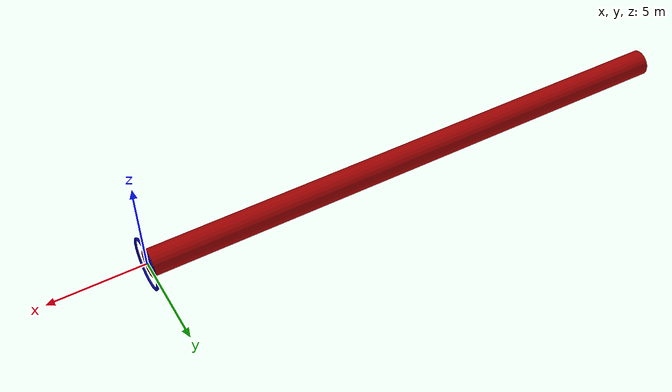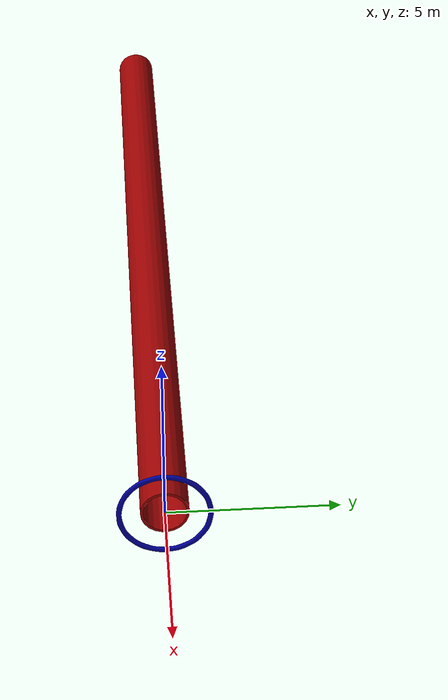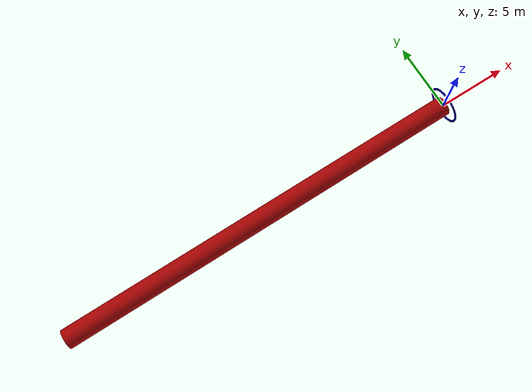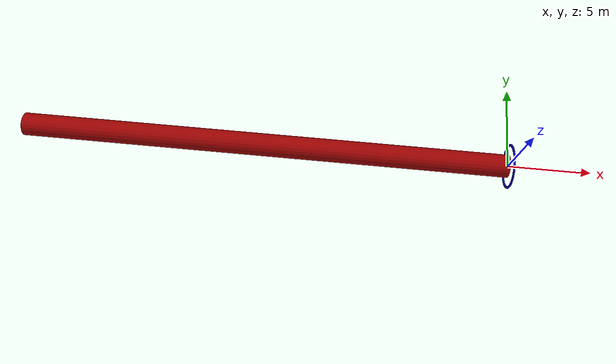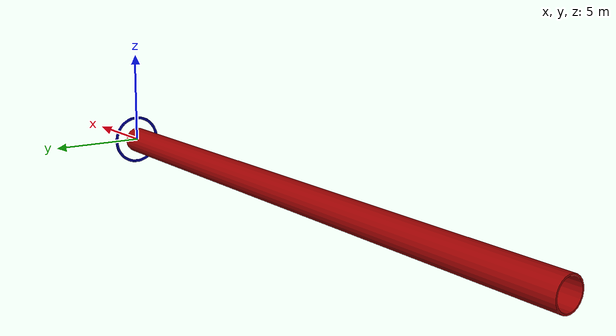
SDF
<?xml version="1.0" ?>
<sdf version="1.4">
    <model name="pipe">
      <static>1</static>

      <material name="red">
        <color rgba="0.8 0 0 1"/>
      </material>

      <link name="pipe">
        <inertial>
          <pose>0 0 0 0 0 0</pose>
          <mass>1.0</mass>
          <inertia>
            <ixx>1.0</ixx>
            <ixy>000000</ixy>
            <ixz>0.000000</ixz>
            <iyy>1.0</iyy>
            <iyz>0.000000</iyz>
            <izz>1.0</izz>
          </inertia>
        </inertial>
        <collision name="collision">
          <pose>0 0 0 0 0 0</pose>
          <geometry>
            <mesh>
                <uri>model://pipe/meshes/pipe30.dae</uri>
                <scale>0.01 0.005 0.005</scale>
            </mesh>
          </geometry>
        </collision>
        <visual name="visual">
          <pose>0 0 0 0 0 0</pose>
          <geometry>
            <mesh>
                <uri>model://pipe/meshes/pipe30.dae</uri>
                <scale>0.01 0.005 0.005</scale>
            </mesh>
          </geometry>
        </visual>
      </link>

      <link name="front">
        <inertial>
          <pose>0 0 0 0 0 0</pose>
          <mass>1.0</mass>
          <inertia>
            <ixx>1.0</ixx>
            <ixy>000000</ixy>
            <ixz>0.000000</ixz>
            <iyy>1.0</iyy>
            <iyz>0.000000</iyz>
            <izz>1.0</izz>
          </inertia>
        </inertial>
        <collision name="collision">
          <pose>0 0 0 0 0 0</pose>
          <geometry>
            <mesh>
                <uri>model://pipe/meshes/pipefront.dae</uri>
                <scale>0.01 0.01 0.01</scale>
            </mesh>
          </geometry>
        </collision>
        <visual name="visual">
          <pose>0 0 0 0 0 0</pose>
          <geometry>
            <mesh>
                <uri>model://pipe/meshes/pipefront.dae</uri>
                <scale>0.01 0.01 0.01</scale>
            </mesh>
          </geometry>
          <material name="blue"/>
        </visual>
      </link>

      <joint name="pipe_to_front" type="fixed">
        <parent link="pipe"/>
        <child link="front"/>
        <origin xyz = "12 0 0"/>
      </joint>

    </model>
</sdf>
